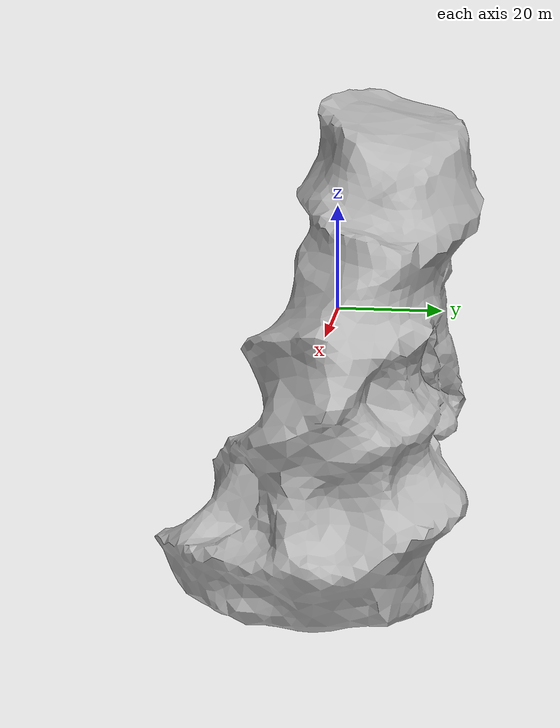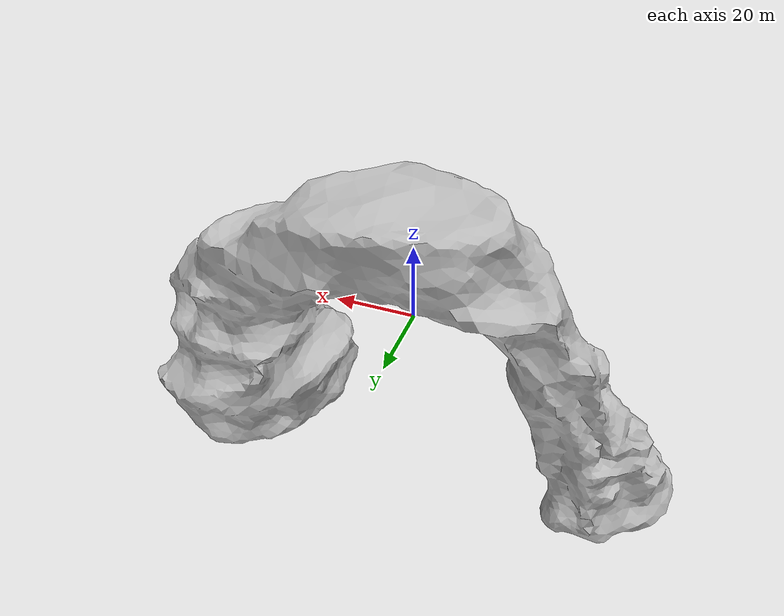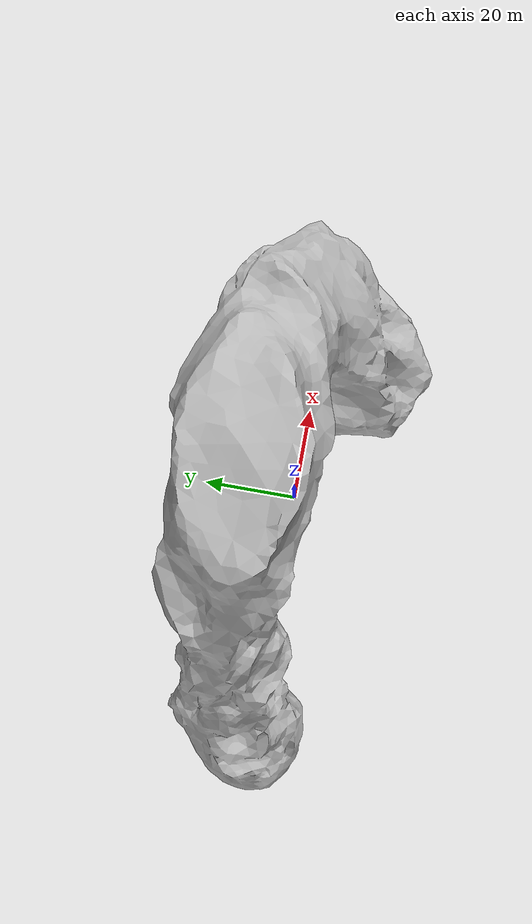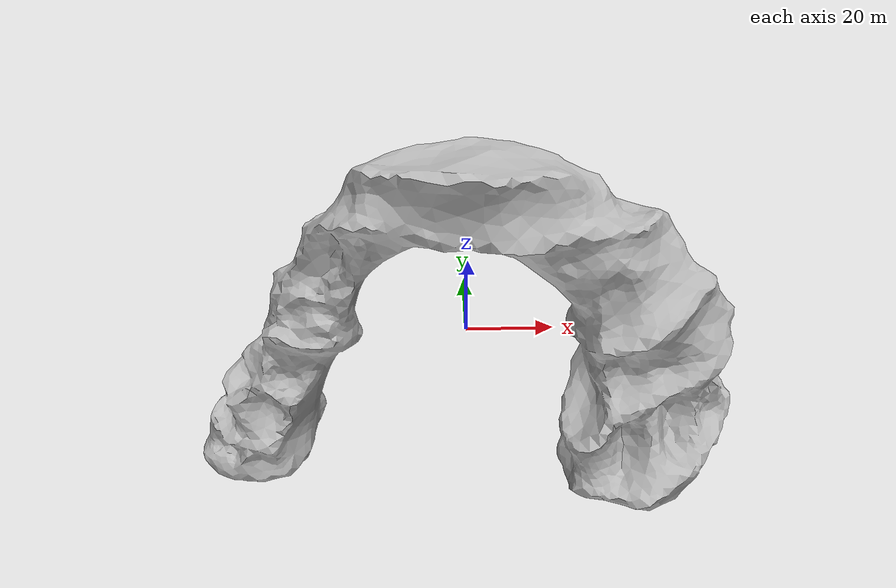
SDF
<sdf version="1.4">
  <model name="stone1">
    <link name="link">
      <collision name="collision">
        <geometry>
          <mesh>
            <uri>model://stone1.dae</uri>
          </mesh>
        </geometry>
      </collision>
      <visual name="visual">
        <geometry>
          <mesh>
            <uri>model://stone1.dae</uri> <!-- Corrected this line -->
          </mesh>
        </geometry>
        <material>
          <script>
            <uri>file://media/materials/scripts/gazebo.material</uri>
            <name>Gazebo/Stone</name>
          </script>
        </material>
      </visual>
    </link>
  </model>
</sdf>
zzz
